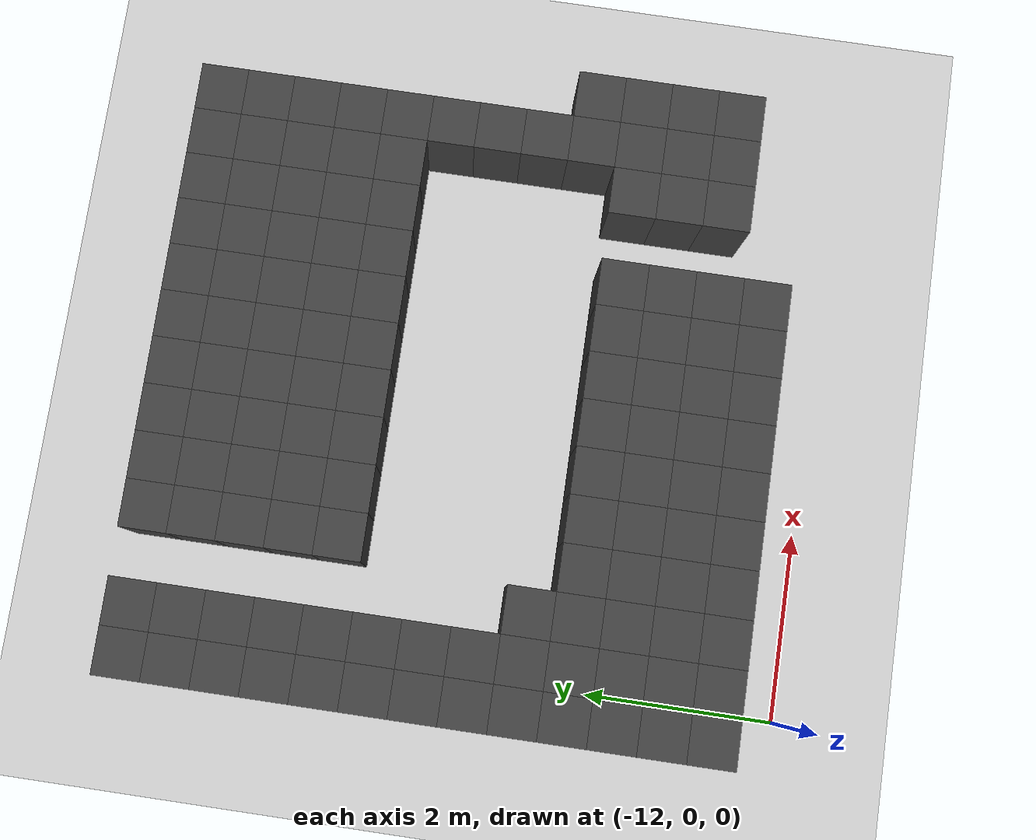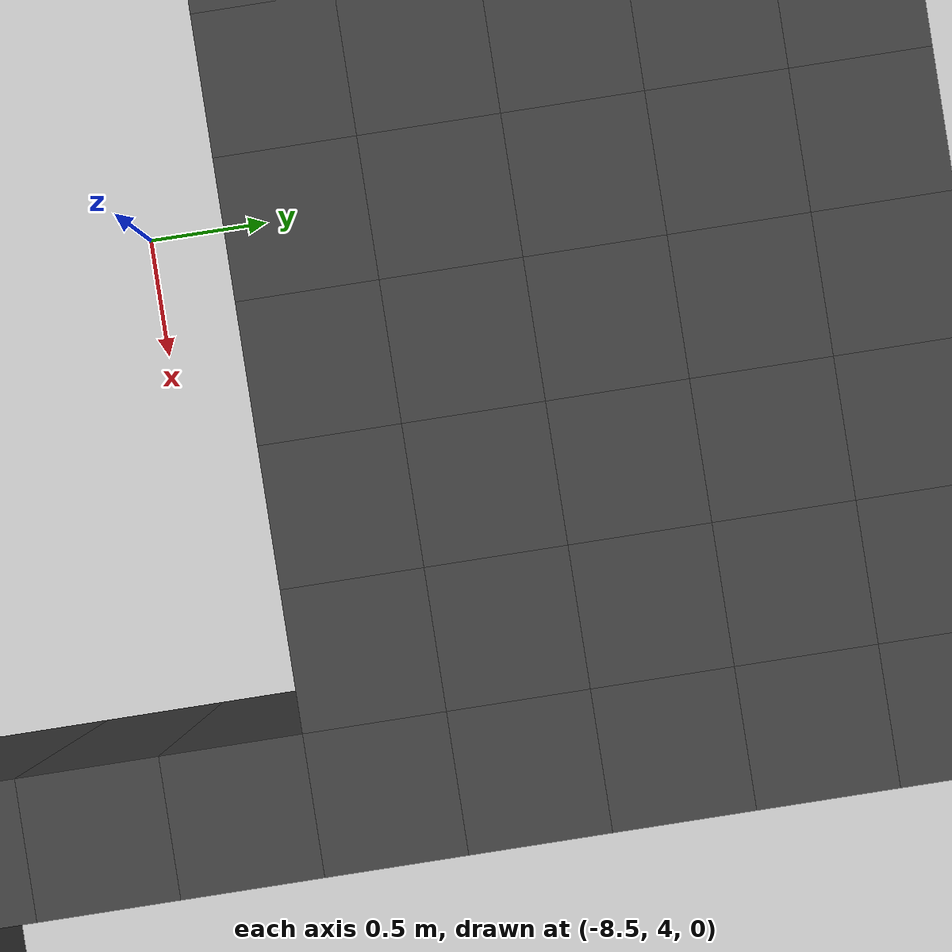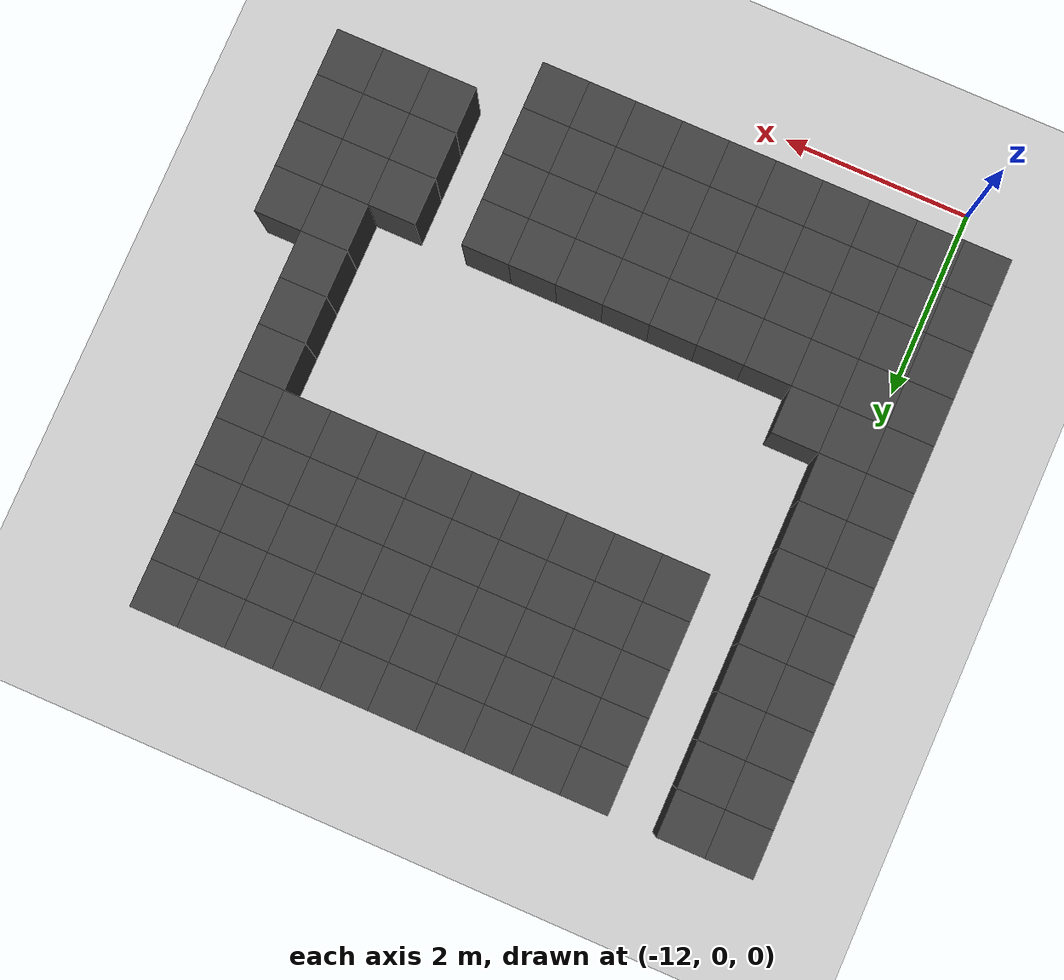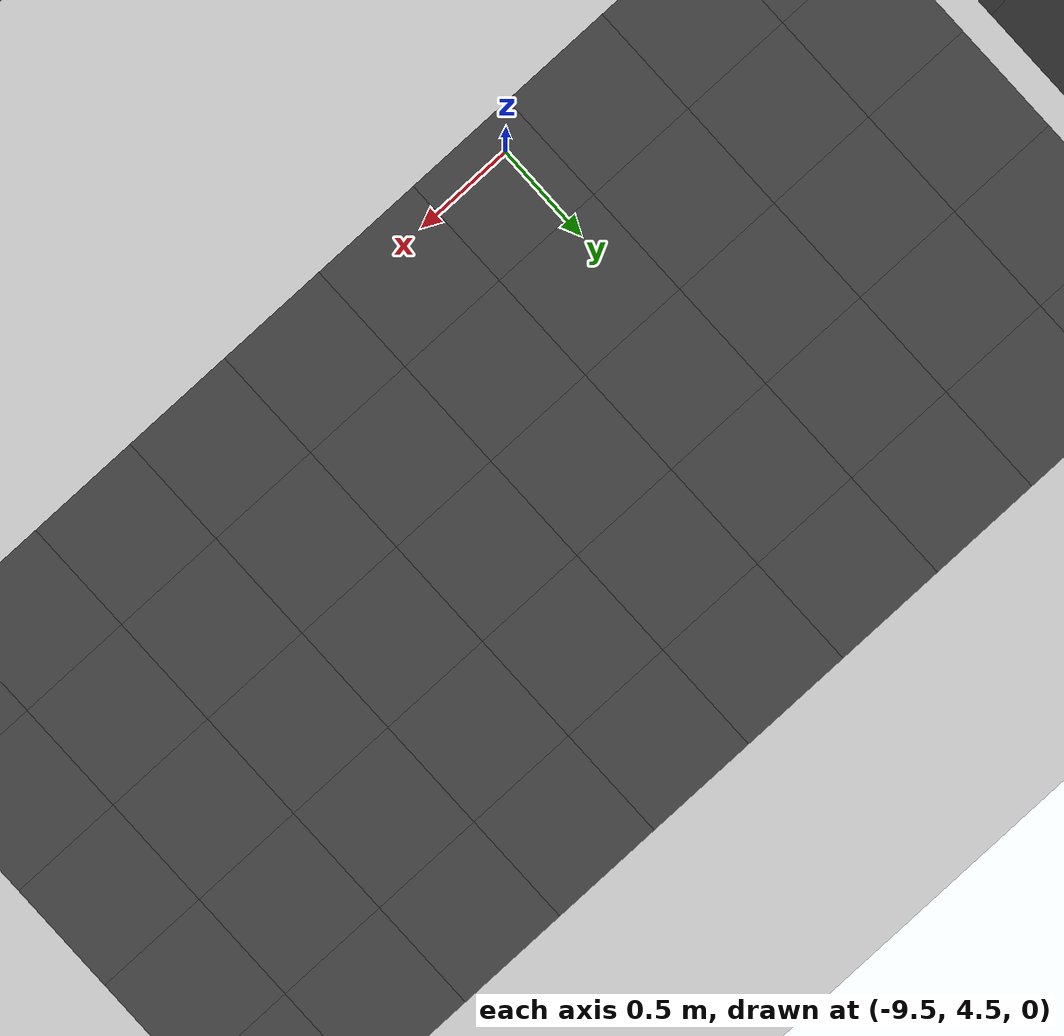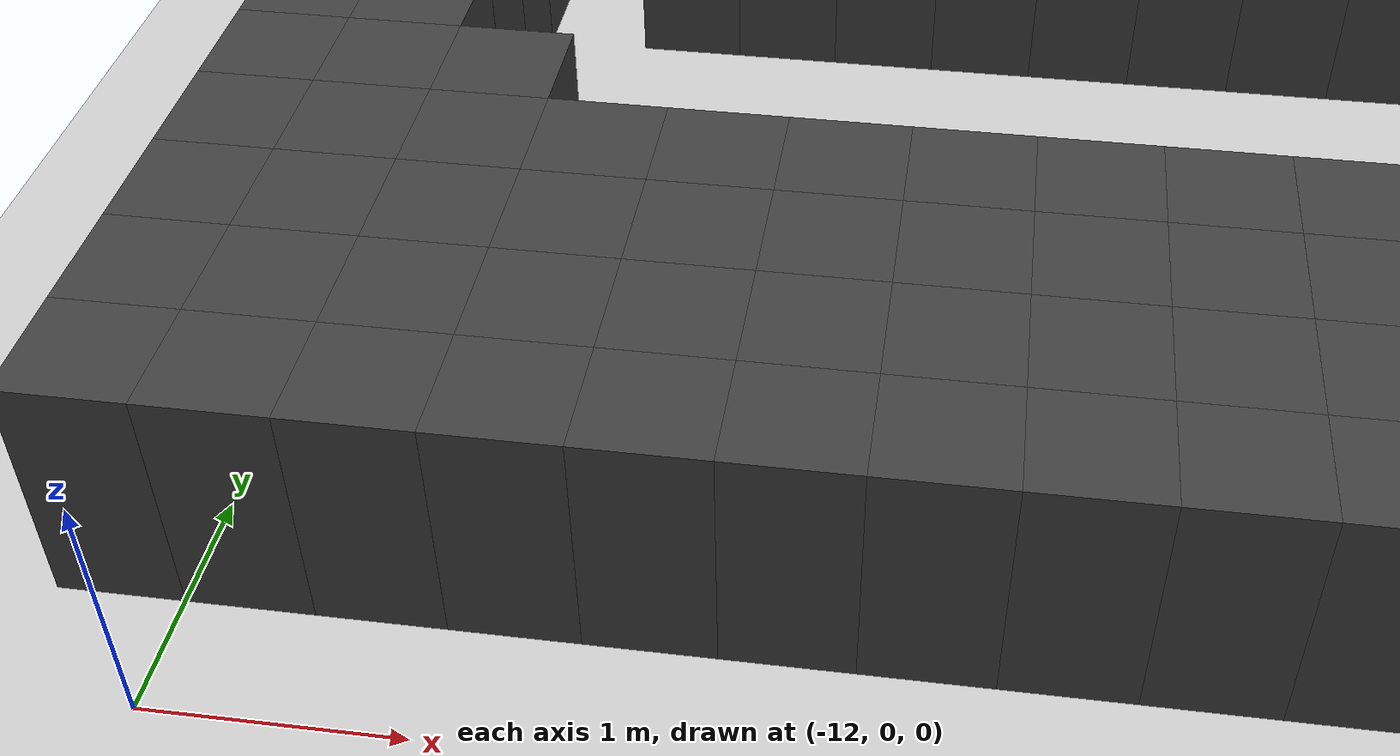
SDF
<sdf version="1.7">
 <world name="map_14074">
  <model name="ground_plane">
   <static>true</static>
   <link name="link">
    <collision name="collision">
     <geometry><plane><normal>0 0 1</normal><size>200 200</size></plane></geometry>
    </collision>
    <visual name="visual">
     <geometry><plane><normal>0 0 1</normal><size>200 200</size></plane></geometry>
     <material><ambient>0.8 0.8 0.8 1</ambient><diffuse>0.8 0.8 0.8 1</diffuse></material>
    </visual>
   </link>
  </model>
  <model name="maze_environment">
   <static>true</static>
   <link name="wall_522">
    <pose>-12.250 6.750 0.500 0 0 0</pose>
    <collision name="col"><geometry><box><size>0.5 0.5 1.0</size></box></geometry></collision>
    <visual name="vis">
     <geometry><box><size>0.5 0.5 1.0</size></box></geometry>
     <material><ambient>0.15 0.15 0.15 1</ambient><diffuse>0.25 0.25 0.25 1</diffuse></material>
    </visual>
   </link>
   <link name="wall_523">
    <pose>-11.750 6.750 0.500 0 0 0</pose>
    <collision name="col"><geometry><box><size>0.5 0.5 1.0</size></box></geometry></collision>
    <visual name="vis">
     <geometry><box><size>0.5 0.5 1.0</size></box></geometry>
     <material><ambient>0.15 0.15 0.15 1</ambient><diffuse>0.25 0.25 0.25 1</diffuse></material>
    </visual>
   </link>
   <link name="wall_524">
    <pose>-10.750 6.750 0.500 0 0 0</pose>
    <collision name="col"><geometry><box><size>0.5 0.5 1.0</size></box></geometry></collision>
    <visual name="vis">
     <geometry><box><size>0.5 0.5 1.0</size></box></geometry>
     <material><ambient>0.15 0.15 0.15 1</ambient><diffuse>0.25 0.25 0.25 1</diffuse></material>
    </visual>
   </link>
   <link name="wall_525">
    <pose>-10.250 6.750 0.500 0 0 0</pose>
    <collision name="col"><geometry><box><size>0.5 0.5 1.0</size></box></geometry></collision>
    <visual name="vis">
     <geometry><box><size>0.5 0.5 1.0</size></box></geometry>
     <material><ambient>0.15 0.15 0.15 1</ambient><diffuse>0.25 0.25 0.25 1</diffuse></material>
    </visual>
   </link>
   <link name="wall_526">
    <pose>-9.750 6.750 0.500 0 0 0</pose>
    <collision name="col"><geometry><box><size>0.5 0.5 1.0</size></box></geometry></collision>
    <visual name="vis">
     <geometry><box><size>0.5 0.5 1.0</size></box></geometry>
     <material><ambient>0.15 0.15 0.15 1</ambient><diffuse>0.25 0.25 0.25 1</diffuse></material>
    </visual>
   </link>
   <link name="wall_527">
    <pose>-9.250 6.750 0.500 0 0 0</pose>
    <collision name="col"><geometry><box><size>0.5 0.5 1.0</size></box></geometry></collision>
    <visual name="vis">
     <geometry><box><size>0.5 0.5 1.0</size></box></geometry>
     <material><ambient>0.15 0.15 0.15 1</ambient><diffuse>0.25 0.25 0.25 1</diffuse></material>
    </visual>
   </link>
   <link name="wall_528">
    <pose>-8.750 6.750 0.500 0 0 0</pose>
    <collision name="col"><geometry><box><size>0.5 0.5 1.0</size></box></geometry></collision>
    <visual name="vis">
     <geometry><box><size>0.5 0.5 1.0</size></box></geometry>
     <material><ambient>0.15 0.15 0.15 1</ambient><diffuse>0.25 0.25 0.25 1</diffuse></material>
    </visual>
   </link>
   <link name="wall_529">
    <pose>-8.250 6.750 0.500 0 0 0</pose>
    <collision name="col"><geometry><box><size>0.5 0.5 1.0</size></box></geometry></collision>
    <visual name="vis">
     <geometry><box><size>0.5 0.5 1.0</size></box></geometry>
     <material><ambient>0.15 0.15 0.15 1</ambient><diffuse>0.25 0.25 0.25 1</diffuse></material>
    </visual>
   </link>
   <link name="wall_530">
    <pose>-7.750 6.750 0.500 0 0 0</pose>
    <collision name="col"><geometry><box><size>0.5 0.5 1.0</size></box></geometry></collision>
    <visual name="vis">
     <geometry><box><size>0.5 0.5 1.0</size></box></geometry>
     <material><ambient>0.15 0.15 0.15 1</ambient><diffuse>0.25 0.25 0.25 1</diffuse></material>
    </visual>
   </link>
   <link name="wall_531">
    <pose>-7.250 6.750 0.500 0 0 0</pose>
    <collision name="col"><geometry><box><size>0.5 0.5 1.0</size></box></geometry></collision>
    <visual name="vis">
     <geometry><box><size>0.5 0.5 1.0</size></box></geometry>
     <material><ambient>0.15 0.15 0.15 1</ambient><diffuse>0.25 0.25 0.25 1</diffuse></material>
    </visual>
   </link>
   <link name="wall_532">
    <pose>-6.750 6.750 0.500 0 0 0</pose>
    <collision name="col"><geometry><box><size>0.5 0.5 1.0</size></box></geometry></collision>
    <visual name="vis">
     <geometry><box><size>0.5 0.5 1.0</size></box></geometry>
     <material><ambient>0.15 0.15 0.15 1</ambient><diffuse>0.25 0.25 0.25 1</diffuse></material>
    </visual>
   </link>
   <link name="wall_533">
    <pose>-6.250 6.750 0.500 0 0 0</pose>
    <collision name="col"><geometry><box><size>0.5 0.5 1.0</size></box></geometry></collision>
    <visual name="vis">
     <geometry><box><size>0.5 0.5 1.0</size></box></geometry>
     <material><ambient>0.15 0.15 0.15 1</ambient><diffuse>0.25 0.25 0.25 1</diffuse></material>
    </visual>
   </link>
   <link name="wall_557">
    <pose>-12.250 6.250 0.500 0 0 0</pose>
    <collision name="col"><geometry><box><size>0.5 0.5 1.0</size></box></geometry></collision>
    <visual name="vis">
     <geometry><box><size>0.5 0.5 1.0</size></box></geometry>
     <material><ambient>0.15 0.15 0.15 1</ambient><diffuse>0.25 0.25 0.25 1</diffuse></material>
    </visual>
   </link>
   <link name="wall_558">
    <pose>-11.750 6.250 0.500 0 0 0</pose>
    <collision name="col"><geometry><box><size>0.5 0.5 1.0</size></box></geometry></collision>
    <visual name="vis">
     <geometry><box><size>0.5 0.5 1.0</size></box></geometry>
     <material><ambient>0.15 0.15 0.15 1</ambient><diffuse>0.25 0.25 0.25 1</diffuse></material>
    </visual>
   </link>
   <link name="wall_559">
    <pose>-10.750 6.250 0.500 0 0 0</pose>
    <collision name="col"><geometry><box><size>0.5 0.5 1.0</size></box></geometry></collision>
    <visual name="vis">
     <geometry><box><size>0.5 0.5 1.0</size></box></geometry>
     <material><ambient>0.15 0.15 0.15 1</ambient><diffuse>0.25 0.25 0.25 1</diffuse></material>
    </visual>
   </link>
   <link name="wall_560">
    <pose>-10.250 6.250 0.500 0 0 0</pose>
    <collision name="col"><geometry><box><size>0.5 0.5 1.0</size></box></geometry></collision>
    <visual name="vis">
     <geometry><box><size>0.5 0.5 1.0</size></box></geometry>
     <material><ambient>0.15 0.15 0.15 1</ambient><diffuse>0.25 0.25 0.25 1</diffuse></material>
    </visual>
   </link>
   <link name="wall_561">
    <pose>-9.750 6.250 0.500 0 0 0</pose>
    <collision name="col"><geometry><box><size>0.5 0.5 1.0</size></box></geometry></collision>
    <visual name="vis">
     <geometry><box><size>0.5 0.5 1.0</size></box></geometry>
     <material><ambient>0.15 0.15 0.15 1</ambient><diffuse>0.25 0.25 0.25 1</diffuse></material>
    </visual>
   </link>
   <link name="wall_562">
    <pose>-9.250 6.250 0.500 0 0 0</pose>
    <collision name="col"><geometry><box><size>0.5 0.5 1.0</size></box></geometry></collision>
    <visual name="vis">
     <geometry><box><size>0.5 0.5 1.0</size></box></geometry>
     <material><ambient>0.15 0.15 0.15 1</ambient><diffuse>0.25 0.25 0.25 1</diffuse></material>
    </visual>
   </link>
   <link name="wall_563">
    <pose>-8.750 6.250 0.500 0 0 0</pose>
    <collision name="col"><geometry><box><size>0.5 0.5 1.0</size></box></geometry></collision>
    <visual name="vis">
     <geometry><box><size>0.5 0.5 1.0</size></box></geometry>
     <material><ambient>0.15 0.15 0.15 1</ambient><diffuse>0.25 0.25 0.25 1</diffuse></material>
    </visual>
   </link>
   <link name="wall_564">
    <pose>-8.250 6.250 0.500 0 0 0</pose>
    <collision name="col"><geometry><box><size>0.5 0.5 1.0</size></box></geometry></collision>
    <visual name="vis">
     <geometry><box><size>0.5 0.5 1.0</size></box></geometry>
     <material><ambient>0.15 0.15 0.15 1</ambient><diffuse>0.25 0.25 0.25 1</diffuse></material>
    </visual>
   </link>
   <link name="wall_565">
    <pose>-7.750 6.250 0.500 0 0 0</pose>
    <collision name="col"><geometry><box><size>0.5 0.5 1.0</size></box></geometry></collision>
    <visual name="vis">
     <geometry><box><size>0.5 0.5 1.0</size></box></geometry>
     <material><ambient>0.15 0.15 0.15 1</ambient><diffuse>0.25 0.25 0.25 1</diffuse></material>
    </visual>
   </link>
   <link name="wall_566">
    <pose>-7.250 6.250 0.500 0 0 0</pose>
    <collision name="col"><geometry><box><size>0.5 0.5 1.0</size></box></geometry></collision>
    <visual name="vis">
     <geometry><box><size>0.5 0.5 1.0</size></box></geometry>
     <material><ambient>0.15 0.15 0.15 1</ambient><diffuse>0.25 0.25 0.25 1</diffuse></material>
    </visual>
   </link>
   <link name="wall_567">
    <pose>-6.750 6.250 0.500 0 0 0</pose>
    <collision name="col"><geometry><box><size>0.5 0.5 1.0</size></box></geometry></collision>
    <visual name="vis">
     <geometry><box><size>0.5 0.5 1.0</size></box></geometry>
     <material><ambient>0.15 0.15 0.15 1</ambient><diffuse>0.25 0.25 0.25 1</diffuse></material>
    </visual>
   </link>
   <link name="wall_568">
    <pose>-6.250 6.250 0.500 0 0 0</pose>
    <collision name="col"><geometry><box><size>0.5 0.5 1.0</size></box></geometry></collision>
    <visual name="vis">
     <geometry><box><size>0.5 0.5 1.0</size></box></geometry>
     <material><ambient>0.15 0.15 0.15 1</ambient><diffuse>0.25 0.25 0.25 1</diffuse></material>
    </visual>
   </link>
   <link name="wall_587">
    <pose>-12.250 5.750 0.500 0 0 0</pose>
    <collision name="col"><geometry><box><size>0.5 0.5 1.0</size></box></geometry></collision>
    <visual name="vis">
     <geometry><box><size>0.5 0.5 1.0</size></box></geometry>
     <material><ambient>0.15 0.15 0.15 1</ambient><diffuse>0.25 0.25 0.25 1</diffuse></material>
    </visual>
   </link>
   <link name="wall_588">
    <pose>-11.750 5.750 0.500 0 0 0</pose>
    <collision name="col"><geometry><box><size>0.5 0.5 1.0</size></box></geometry></collision>
    <visual name="vis">
     <geometry><box><size>0.5 0.5 1.0</size></box></geometry>
     <material><ambient>0.15 0.15 0.15 1</ambient><diffuse>0.25 0.25 0.25 1</diffuse></material>
    </visual>
   </link>
   <link name="wall_589">
    <pose>-10.750 5.750 0.500 0 0 0</pose>
    <collision name="col"><geometry><box><size>0.5 0.5 1.0</size></box></geometry></collision>
    <visual name="vis">
     <geometry><box><size>0.5 0.5 1.0</size></box></geometry>
     <material><ambient>0.15 0.15 0.15 1</ambient><diffuse>0.25 0.25 0.25 1</diffuse></material>
    </visual>
   </link>
   <link name="wall_590">
    <pose>-10.250 5.750 0.500 0 0 0</pose>
    <collision name="col"><geometry><box><size>0.5 0.5 1.0</size></box></geometry></collision>
    <visual name="vis">
     <geometry><box><size>0.5 0.5 1.0</size></box></geometry>
     <material><ambient>0.15 0.15 0.15 1</ambient><diffuse>0.25 0.25 0.25 1</diffuse></material>
    </visual>
   </link>
   <link name="wall_591">
    <pose>-9.750 5.750 0.500 0 0 0</pose>
    <collision name="col"><geometry><box><size>0.5 0.5 1.0</size></box></geometry></collision>
    <visual name="vis">
     <geometry><box><size>0.5 0.5 1.0</size></box></geometry>
     <material><ambient>0.15 0.15 0.15 1</ambient><diffuse>0.25 0.25 0.25 1</diffuse></material>
    </visual>
   </link>
   <link name="wall_592">
    <pose>-9.250 5.750 0.500 0 0 0</pose>
    <collision name="col"><geometry><box><size>0.5 0.5 1.0</size></box></geometry></collision>
    <visual name="vis">
     <geometry><box><size>0.5 0.5 1.0</size></box></geometry>
     <material><ambient>0.15 0.15 0.15 1</ambient><diffuse>0.25 0.25 0.25 1</diffuse></material>
    </visual>
   </link>
   <link name="wall_593">
    <pose>-8.750 5.750 0.500 0 0 0</pose>
    <collision name="col"><geometry><box><size>0.5 0.5 1.0</size></box></geometry></collision>
    <visual name="vis">
     <geometry><box><size>0.5 0.5 1.0</size></box></geometry>
     <material><ambient>0.15 0.15 0.15 1</ambient><diffuse>0.25 0.25 0.25 1</diffuse></material>
    </visual>
   </link>
   <link name="wall_594">
    <pose>-8.250 5.750 0.500 0 0 0</pose>
    <collision name="col"><geometry><box><size>0.5 0.5 1.0</size></box></geometry></collision>
    <visual name="vis">
     <geometry><box><size>0.5 0.5 1.0</size></box></geometry>
     <material><ambient>0.15 0.15 0.15 1</ambient><diffuse>0.25 0.25 0.25 1</diffuse></material>
    </visual>
   </link>
   <link name="wall_595">
    <pose>-7.750 5.750 0.500 0 0 0</pose>
    <collision name="col"><geometry><box><size>0.5 0.5 1.0</size></box></geometry></collision>
    <visual name="vis">
     <geometry><box><size>0.5 0.5 1.0</size></box></geometry>
     <material><ambient>0.15 0.15 0.15 1</ambient><diffuse>0.25 0.25 0.25 1</diffuse></material>
    </visual>
   </link>
   <link name="wall_596">
    <pose>-7.250 5.750 0.500 0 0 0</pose>
    <collision name="col"><geometry><box><size>0.5 0.5 1.0</size></box></geometry></collision>
    <visual name="vis">
     <geometry><box><size>0.5 0.5 1.0</size></box></geometry>
     <material><ambient>0.15 0.15 0.15 1</ambient><diffuse>0.25 0.25 0.25 1</diffuse></material>
    </visual>
   </link>
   <link name="wall_597">
    <pose>-6.750 5.750 0.500 0 0 0</pose>
    <collision name="col"><geometry><box><size>0.5 0.5 1.0</size></box></geometry></collision>
    <visual name="vis">
     <geometry><box><size>0.5 0.5 1.0</size></box></geometry>
     <material><ambient>0.15 0.15 0.15 1</ambient><diffuse>0.25 0.25 0.25 1</diffuse></material>
    </visual>
   </link>
   <link name="wall_598">
    <pose>-6.250 5.750 0.500 0 0 0</pose>
    <collision name="col"><geometry><box><size>0.5 0.5 1.0</size></box></geometry></collision>
    <visual name="vis">
     <geometry><box><size>0.5 0.5 1.0</size></box></geometry>
     <material><ambient>0.15 0.15 0.15 1</ambient><diffuse>0.25 0.25 0.25 1</diffuse></material>
    </visual>
   </link>
   <link name="wall_608">
    <pose>-12.250 5.250 0.500 0 0 0</pose>
    <collision name="col"><geometry><box><size>0.5 0.5 1.0</size></box></geometry></collision>
    <visual name="vis">
     <geometry><box><size>0.5 0.5 1.0</size></box></geometry>
     <material><ambient>0.15 0.15 0.15 1</ambient><diffuse>0.25 0.25 0.25 1</diffuse></material>
    </visual>
   </link>
   <link name="wall_609">
    <pose>-11.750 5.250 0.500 0 0 0</pose>
    <collision name="col"><geometry><box><size>0.5 0.5 1.0</size></box></geometry></collision>
    <visual name="vis">
     <geometry><box><size>0.5 0.5 1.0</size></box></geometry>
     <material><ambient>0.15 0.15 0.15 1</ambient><diffuse>0.25 0.25 0.25 1</diffuse></material>
    </visual>
   </link>
   <link name="wall_610">
    <pose>-10.750 5.250 0.500 0 0 0</pose>
    <collision name="col"><geometry><box><size>0.5 0.5 1.0</size></box></geometry></collision>
    <visual name="vis">
     <geometry><box><size>0.5 0.5 1.0</size></box></geometry>
     <material><ambient>0.15 0.15 0.15 1</ambient><diffuse>0.25 0.25 0.25 1</diffuse></material>
    </visual>
   </link>
   <link name="wall_611">
    <pose>-10.250 5.250 0.500 0 0 0</pose>
    <collision name="col"><geometry><box><size>0.5 0.5 1.0</size></box></geometry></collision>
    <visual name="vis">
     <geometry><box><size>0.5 0.5 1.0</size></box></geometry>
     <material><ambient>0.15 0.15 0.15 1</ambient><diffuse>0.25 0.25 0.25 1</diffuse></material>
    </visual>
   </link>
   <link name="wall_612">
    <pose>-9.750 5.250 0.500 0 0 0</pose>
    <collision name="col"><geometry><box><size>0.5 0.5 1.0</size></box></geometry></collision>
    <visual name="vis">
     <geometry><box><size>0.5 0.5 1.0</size></box></geometry>
     <material><ambient>0.15 0.15 0.15 1</ambient><diffuse>0.25 0.25 0.25 1</diffuse></material>
    </visual>
   </link>
   <link name="wall_613">
    <pose>-9.250 5.250 0.500 0 0 0</pose>
    <collision name="col"><geometry><box><size>0.5 0.5 1.0</size></box></geometry></collision>
    <visual name="vis">
     <geometry><box><size>0.5 0.5 1.0</size></box></geometry>
     <material><ambient>0.15 0.15 0.15 1</ambient><diffuse>0.25 0.25 0.25 1</diffuse></material>
    </visual>
   </link>
   <link name="wall_614">
    <pose>-8.750 5.250 0.500 0 0 0</pose>
    <collision name="col"><geometry><box><size>0.5 0.5 1.0</size></box></geometry></collision>
    <visual name="vis">
     <geometry><box><size>0.5 0.5 1.0</size></box></geometry>
     <material><ambient>0.15 0.15 0.15 1</ambient><diffuse>0.25 0.25 0.25 1</diffuse></material>
    </visual>
   </link>
   <link name="wall_615">
    <pose>-8.250 5.250 0.500 0 0 0</pose>
    <collision name="col"><geometry><box><size>0.5 0.5 1.0</size></box></geometry></collision>
    <visual name="vis">
     <geometry><box><size>0.5 0.5 1.0</size></box></geometry>
     <material><ambient>0.15 0.15 0.15 1</ambient><diffuse>0.25 0.25 0.25 1</diffuse></material>
    </visual>
   </link>
   <link name="wall_616">
    <pose>-7.750 5.250 0.500 0 0 0</pose>
    <collision name="col"><geometry><box><size>0.5 0.5 1.0</size></box></geometry></collision>
    <visual name="vis">
     <geometry><box><size>0.5 0.5 1.0</size></box></geometry>
     <material><ambient>0.15 0.15 0.15 1</ambient><diffuse>0.25 0.25 0.25 1</diffuse></material>
    </visual>
   </link>
   <link name="wall_617">
    <pose>-7.250 5.250 0.500 0 0 0</pose>
    <collision name="col"><geometry><box><size>0.5 0.5 1.0</size></box></geometry></collision>
    <visual name="vis">
     <geometry><box><size>0.5 0.5 1.0</size></box></geometry>
     <material><ambient>0.15 0.15 0.15 1</ambient><diffuse>0.25 0.25 0.25 1</diffuse></material>
    </visual>
   </link>
   <link name="wall_618">
    <pose>-6.750 5.250 0.500 0 0 0</pose>
    <collision name="col"><geometry><box><size>0.5 0.5 1.0</size></box></geometry></collision>
    <visual name="vis">
     <geometry><box><size>0.5 0.5 1.0</size></box></geometry>
     <material><ambient>0.15 0.15 0.15 1</ambient><diffuse>0.25 0.25 0.25 1</diffuse></material>
    </visual>
   </link>
   <link name="wall_619">
    <pose>-6.250 5.250 0.500 0 0 0</pose>
    <collision name="col"><geometry><box><size>0.5 0.5 1.0</size></box></geometry></collision>
    <visual name="vis">
     <geometry><box><size>0.5 0.5 1.0</size></box></geometry>
     <material><ambient>0.15 0.15 0.15 1</ambient><diffuse>0.25 0.25 0.25 1</diffuse></material>
    </visual>
   </link>
   <link name="wall_638">
    <pose>-12.250 4.750 0.500 0 0 0</pose>
    <collision name="col"><geometry><box><size>0.5 0.5 1.0</size></box></geometry></collision>
    <visual name="vis">
     <geometry><box><size>0.5 0.5 1.0</size></box></geometry>
     <material><ambient>0.15 0.15 0.15 1</ambient><diffuse>0.25 0.25 0.25 1</diffuse></material>
    </visual>
   </link>
   <link name="wall_639">
    <pose>-11.750 4.750 0.500 0 0 0</pose>
    <collision name="col"><geometry><box><size>0.5 0.5 1.0</size></box></geometry></collision>
    <visual name="vis">
     <geometry><box><size>0.5 0.5 1.0</size></box></geometry>
     <material><ambient>0.15 0.15 0.15 1</ambient><diffuse>0.25 0.25 0.25 1</diffuse></material>
    </visual>
   </link>
   <link name="wall_640">
    <pose>-10.750 4.750 0.500 0 0 0</pose>
    <collision name="col"><geometry><box><size>0.5 0.5 1.0</size></box></geometry></collision>
    <visual name="vis">
     <geometry><box><size>0.5 0.5 1.0</size></box></geometry>
     <material><ambient>0.15 0.15 0.15 1</ambient><diffuse>0.25 0.25 0.25 1</diffuse></material>
    </visual>
   </link>
   <link name="wall_641">
    <pose>-10.250 4.750 0.500 0 0 0</pose>
    <collision name="col"><geometry><box><size>0.5 0.5 1.0</size></box></geometry></collision>
    <visual name="vis">
     <geometry><box><size>0.5 0.5 1.0</size></box></geometry>
     <material><ambient>0.15 0.15 0.15 1</ambient><diffuse>0.25 0.25 0.25 1</diffuse></material>
    </visual>
   </link>
   <link name="wall_642">
    <pose>-9.750 4.750 0.500 0 0 0</pose>
    <collision name="col"><geometry><box><size>0.5 0.5 1.0</size></box></geometry></collision>
    <visual name="vis">
     <geometry><box><size>0.5 0.5 1.0</size></box></geometry>
     <material><ambient>0.15 0.15 0.15 1</ambient><diffuse>0.25 0.25 0.25 1</diffuse></material>
    </visual>
   </link>
   <link name="wall_643">
    <pose>-9.250 4.750 0.500 0 0 0</pose>
    <collision name="col"><geometry><box><size>0.5 0.5 1.0</size></box></geometry></collision>
    <visual name="vis">
     <geometry><box><size>0.5 0.5 1.0</size></box></geometry>
     <material><ambient>0.15 0.15 0.15 1</ambient><diffuse>0.25 0.25 0.25 1</diffuse></material>
    </visual>
   </link>
   <link name="wall_644">
    <pose>-8.750 4.750 0.500 0 0 0</pose>
    <collision name="col"><geometry><box><size>0.5 0.5 1.0</size></box></geometry></collision>
    <visual name="vis">
     <geometry><box><size>0.5 0.5 1.0</size></box></geometry>
     <material><ambient>0.15 0.15 0.15 1</ambient><diffuse>0.25 0.25 0.25 1</diffuse></material>
    </visual>
   </link>
   <link name="wall_645">
    <pose>-8.250 4.750 0.500 0 0 0</pose>
    <collision name="col"><geometry><box><size>0.5 0.5 1.0</size></box></geometry></collision>
    <visual name="vis">
     <geometry><box><size>0.5 0.5 1.0</size></box></geometry>
     <material><ambient>0.15 0.15 0.15 1</ambient><diffuse>0.25 0.25 0.25 1</diffuse></material>
    </visual>
   </link>
   <link name="wall_646">
    <pose>-7.750 4.750 0.500 0 0 0</pose>
    <collision name="col"><geometry><box><size>0.5 0.5 1.0</size></box></geometry></collision>
    <visual name="vis">
     <geometry><box><size>0.5 0.5 1.0</size></box></geometry>
     <material><ambient>0.15 0.15 0.15 1</ambient><diffuse>0.25 0.25 0.25 1</diffuse></material>
    </visual>
   </link>
   <link name="wall_647">
    <pose>-7.250 4.750 0.500 0 0 0</pose>
    <collision name="col"><geometry><box><size>0.5 0.5 1.0</size></box></geometry></collision>
    <visual name="vis">
     <geometry><box><size>0.5 0.5 1.0</size></box></geometry>
     <material><ambient>0.15 0.15 0.15 1</ambient><diffuse>0.25 0.25 0.25 1</diffuse></material>
    </visual>
   </link>
   <link name="wall_648">
    <pose>-6.750 4.750 0.500 0 0 0</pose>
    <collision name="col"><geometry><box><size>0.5 0.5 1.0</size></box></geometry></collision>
    <visual name="vis">
     <geometry><box><size>0.5 0.5 1.0</size></box></geometry>
     <material><ambient>0.15 0.15 0.15 1</ambient><diffuse>0.25 0.25 0.25 1</diffuse></material>
    </visual>
   </link>
   <link name="wall_649">
    <pose>-6.250 4.750 0.500 0 0 0</pose>
    <collision name="col"><geometry><box><size>0.5 0.5 1.0</size></box></geometry></collision>
    <visual name="vis">
     <geometry><box><size>0.5 0.5 1.0</size></box></geometry>
     <material><ambient>0.15 0.15 0.15 1</ambient><diffuse>0.25 0.25 0.25 1</diffuse></material>
    </visual>
   </link>
   <link name="wall_672">
    <pose>-12.250 4.250 0.500 0 0 0</pose>
    <collision name="col"><geometry><box><size>0.5 0.5 1.0</size></box></geometry></collision>
    <visual name="vis">
     <geometry><box><size>0.5 0.5 1.0</size></box></geometry>
     <material><ambient>0.15 0.15 0.15 1</ambient><diffuse>0.25 0.25 0.25 1</diffuse></material>
    </visual>
   </link>
   <link name="wall_673">
    <pose>-11.750 4.250 0.500 0 0 0</pose>
    <collision name="col"><geometry><box><size>0.5 0.5 1.0</size></box></geometry></collision>
    <visual name="vis">
     <geometry><box><size>0.5 0.5 1.0</size></box></geometry>
     <material><ambient>0.15 0.15 0.15 1</ambient><diffuse>0.25 0.25 0.25 1</diffuse></material>
    </visual>
   </link>
   <link name="wall_674">
    <pose>-6.250 4.250 0.500 0 0 0</pose>
    <collision name="col"><geometry><box><size>0.5 0.5 1.0</size></box></geometry></collision>
    <visual name="vis">
     <geometry><box><size>0.5 0.5 1.0</size></box></geometry>
     <material><ambient>0.15 0.15 0.15 1</ambient><diffuse>0.25 0.25 0.25 1</diffuse></material>
    </visual>
   </link>
   <link name="wall_697">
    <pose>-12.250 3.750 0.500 0 0 0</pose>
    <collision name="col"><geometry><box><size>0.5 0.5 1.0</size></box></geometry></collision>
    <visual name="vis">
     <geometry><box><size>0.5 0.5 1.0</size></box></geometry>
     <material><ambient>0.15 0.15 0.15 1</ambient><diffuse>0.25 0.25 0.25 1</diffuse></material>
    </visual>
   </link>
   <link name="wall_698">
    <pose>-11.750 3.750 0.500 0 0 0</pose>
    <collision name="col"><geometry><box><size>0.5 0.5 1.0</size></box></geometry></collision>
    <visual name="vis">
     <geometry><box><size>0.5 0.5 1.0</size></box></geometry>
     <material><ambient>0.15 0.15 0.15 1</ambient><diffuse>0.25 0.25 0.25 1</diffuse></material>
    </visual>
   </link>
   <link name="wall_699">
    <pose>-6.250 3.750 0.500 0 0 0</pose>
    <collision name="col"><geometry><box><size>0.5 0.5 1.0</size></box></geometry></collision>
    <visual name="vis">
     <geometry><box><size>0.5 0.5 1.0</size></box></geometry>
     <material><ambient>0.15 0.15 0.15 1</ambient><diffuse>0.25 0.25 0.25 1</diffuse></material>
    </visual>
   </link>
   <link name="wall_725">
    <pose>-12.250 3.250 0.500 0 0 0</pose>
    <collision name="col"><geometry><box><size>0.5 0.5 1.0</size></box></geometry></collision>
    <visual name="vis">
     <geometry><box><size>0.5 0.5 1.0</size></box></geometry>
     <material><ambient>0.15 0.15 0.15 1</ambient><diffuse>0.25 0.25 0.25 1</diffuse></material>
    </visual>
   </link>
   <link name="wall_726">
    <pose>-11.750 3.250 0.500 0 0 0</pose>
    <collision name="col"><geometry><box><size>0.5 0.5 1.0</size></box></geometry></collision>
    <visual name="vis">
     <geometry><box><size>0.5 0.5 1.0</size></box></geometry>
     <material><ambient>0.15 0.15 0.15 1</ambient><diffuse>0.25 0.25 0.25 1</diffuse></material>
    </visual>
   </link>
   <link name="wall_727">
    <pose>-6.250 3.250 0.500 0 0 0</pose>
    <collision name="col"><geometry><box><size>0.5 0.5 1.0</size></box></geometry></collision>
    <visual name="vis">
     <geometry><box><size>0.5 0.5 1.0</size></box></geometry>
     <material><ambient>0.15 0.15 0.15 1</ambient><diffuse>0.25 0.25 0.25 1</diffuse></material>
    </visual>
   </link>
   <link name="wall_753">
    <pose>-12.250 2.750 0.500 0 0 0</pose>
    <collision name="col"><geometry><box><size>0.5 0.5 1.0</size></box></geometry></collision>
    <visual name="vis">
     <geometry><box><size>0.5 0.5 1.0</size></box></geometry>
     <material><ambient>0.15 0.15 0.15 1</ambient><diffuse>0.25 0.25 0.25 1</diffuse></material>
    </visual>
   </link>
   <link name="wall_754">
    <pose>-11.750 2.750 0.500 0 0 0</pose>
    <collision name="col"><geometry><box><size>0.5 0.5 1.0</size></box></geometry></collision>
    <visual name="vis">
     <geometry><box><size>0.5 0.5 1.0</size></box></geometry>
     <material><ambient>0.15 0.15 0.15 1</ambient><diffuse>0.25 0.25 0.25 1</diffuse></material>
    </visual>
   </link>
   <link name="wall_755">
    <pose>-11.250 2.750 0.500 0 0 0</pose>
    <collision name="col"><geometry><box><size>0.5 0.5 1.0</size></box></geometry></collision>
    <visual name="vis">
     <geometry><box><size>0.5 0.5 1.0</size></box></geometry>
     <material><ambient>0.15 0.15 0.15 1</ambient><diffuse>0.25 0.25 0.25 1</diffuse></material>
    </visual>
   </link>
   <link name="wall_756">
    <pose>-6.250 2.750 0.500 0 0 0</pose>
    <collision name="col"><geometry><box><size>0.5 0.5 1.0</size></box></geometry></collision>
    <visual name="vis">
     <geometry><box><size>0.5 0.5 1.0</size></box></geometry>
     <material><ambient>0.15 0.15 0.15 1</ambient><diffuse>0.25 0.25 0.25 1</diffuse></material>
    </visual>
   </link>
   <link name="wall_757">
    <pose>-5.750 2.750 0.500 0 0 0</pose>
    <collision name="col"><geometry><box><size>0.5 0.5 1.0</size></box></geometry></collision>
    <visual name="vis">
     <geometry><box><size>0.5 0.5 1.0</size></box></geometry>
     <material><ambient>0.15 0.15 0.15 1</ambient><diffuse>0.25 0.25 0.25 1</diffuse></material>
    </visual>
   </link>
   <link name="wall_786">
    <pose>-12.250 2.250 0.500 0 0 0</pose>
    <collision name="col"><geometry><box><size>0.5 0.5 1.0</size></box></geometry></collision>
    <visual name="vis">
     <geometry><box><size>0.5 0.5 1.0</size></box></geometry>
     <material><ambient>0.15 0.15 0.15 1</ambient><diffuse>0.25 0.25 0.25 1</diffuse></material>
    </visual>
   </link>
   <link name="wall_787">
    <pose>-11.750 2.250 0.500 0 0 0</pose>
    <collision name="col"><geometry><box><size>0.5 0.5 1.0</size></box></geometry></collision>
    <visual name="vis">
     <geometry><box><size>0.5 0.5 1.0</size></box></geometry>
     <material><ambient>0.15 0.15 0.15 1</ambient><diffuse>0.25 0.25 0.25 1</diffuse></material>
    </visual>
   </link>
   <link name="wall_788">
    <pose>-11.250 2.250 0.500 0 0 0</pose>
    <collision name="col"><geometry><box><size>0.5 0.5 1.0</size></box></geometry></collision>
    <visual name="vis">
     <geometry><box><size>0.5 0.5 1.0</size></box></geometry>
     <material><ambient>0.15 0.15 0.15 1</ambient><diffuse>0.25 0.25 0.25 1</diffuse></material>
    </visual>
   </link>
   <link name="wall_789">
    <pose>-10.750 2.250 0.500 0 0 0</pose>
    <collision name="col"><geometry><box><size>0.5 0.5 1.0</size></box></geometry></collision>
    <visual name="vis">
     <geometry><box><size>0.5 0.5 1.0</size></box></geometry>
     <material><ambient>0.15 0.15 0.15 1</ambient><diffuse>0.25 0.25 0.25 1</diffuse></material>
    </visual>
   </link>
   <link name="wall_790">
    <pose>-10.250 2.250 0.500 0 0 0</pose>
    <collision name="col"><geometry><box><size>0.5 0.5 1.0</size></box></geometry></collision>
    <visual name="vis">
     <geometry><box><size>0.5 0.5 1.0</size></box></geometry>
     <material><ambient>0.15 0.15 0.15 1</ambient><diffuse>0.25 0.25 0.25 1</diffuse></material>
    </visual>
   </link>
   <link name="wall_791">
    <pose>-9.750 2.250 0.500 0 0 0</pose>
    <collision name="col"><geometry><box><size>0.5 0.5 1.0</size></box></geometry></collision>
    <visual name="vis">
     <geometry><box><size>0.5 0.5 1.0</size></box></geometry>
     <material><ambient>0.15 0.15 0.15 1</ambient><diffuse>0.25 0.25 0.25 1</diffuse></material>
    </visual>
   </link>
   <link name="wall_792">
    <pose>-9.250 2.250 0.500 0 0 0</pose>
    <collision name="col"><geometry><box><size>0.5 0.5 1.0</size></box></geometry></collision>
    <visual name="vis">
     <geometry><box><size>0.5 0.5 1.0</size></box></geometry>
     <material><ambient>0.15 0.15 0.15 1</ambient><diffuse>0.25 0.25 0.25 1</diffuse></material>
    </visual>
   </link>
   <link name="wall_793">
    <pose>-8.750 2.250 0.500 0 0 0</pose>
    <collision name="col"><geometry><box><size>0.5 0.5 1.0</size></box></geometry></collision>
    <visual name="vis">
     <geometry><box><size>0.5 0.5 1.0</size></box></geometry>
     <material><ambient>0.15 0.15 0.15 1</ambient><diffuse>0.25 0.25 0.25 1</diffuse></material>
    </visual>
   </link>
   <link name="wall_794">
    <pose>-8.250 2.250 0.500 0 0 0</pose>
    <collision name="col"><geometry><box><size>0.5 0.5 1.0</size></box></geometry></collision>
    <visual name="vis">
     <geometry><box><size>0.5 0.5 1.0</size></box></geometry>
     <material><ambient>0.15 0.15 0.15 1</ambient><diffuse>0.25 0.25 0.25 1</diffuse></material>
    </visual>
   </link>
   <link name="wall_795">
    <pose>-7.750 2.250 0.500 0 0 0</pose>
    <collision name="col"><geometry><box><size>0.5 0.5 1.0</size></box></geometry></collision>
    <visual name="vis">
     <geometry><box><size>0.5 0.5 1.0</size></box></geometry>
     <material><ambient>0.15 0.15 0.15 1</ambient><diffuse>0.25 0.25 0.25 1</diffuse></material>
    </visual>
   </link>
   <link name="wall_796">
    <pose>-6.750 2.250 0.500 0 0 0</pose>
    <collision name="col"><geometry><box><size>0.5 0.5 1.0</size></box></geometry></collision>
    <visual name="vis">
     <geometry><box><size>0.5 0.5 1.0</size></box></geometry>
     <material><ambient>0.15 0.15 0.15 1</ambient><diffuse>0.25 0.25 0.25 1</diffuse></material>
    </visual>
   </link>
   <link name="wall_797">
    <pose>-6.250 2.250 0.500 0 0 0</pose>
    <collision name="col"><geometry><box><size>0.5 0.5 1.0</size></box></geometry></collision>
    <visual name="vis">
     <geometry><box><size>0.5 0.5 1.0</size></box></geometry>
     <material><ambient>0.15 0.15 0.15 1</ambient><diffuse>0.25 0.25 0.25 1</diffuse></material>
    </visual>
   </link>
   <link name="wall_798">
    <pose>-5.750 2.250 0.500 0 0 0</pose>
    <collision name="col"><geometry><box><size>0.5 0.5 1.0</size></box></geometry></collision>
    <visual name="vis">
     <geometry><box><size>0.5 0.5 1.0</size></box></geometry>
     <material><ambient>0.15 0.15 0.15 1</ambient><diffuse>0.25 0.25 0.25 1</diffuse></material>
    </visual>
   </link>
   <link name="wall_827">
    <pose>-12.250 1.750 0.500 0 0 0</pose>
    <collision name="col"><geometry><box><size>0.5 0.5 1.0</size></box></geometry></collision>
    <visual name="vis">
     <geometry><box><size>0.5 0.5 1.0</size></box></geometry>
     <material><ambient>0.15 0.15 0.15 1</ambient><diffuse>0.25 0.25 0.25 1</diffuse></material>
    </visual>
   </link>
   <link name="wall_828">
    <pose>-11.750 1.750 0.500 0 0 0</pose>
    <collision name="col"><geometry><box><size>0.5 0.5 1.0</size></box></geometry></collision>
    <visual name="vis">
     <geometry><box><size>0.5 0.5 1.0</size></box></geometry>
     <material><ambient>0.15 0.15 0.15 1</ambient><diffuse>0.25 0.25 0.25 1</diffuse></material>
    </visual>
   </link>
   <link name="wall_829">
    <pose>-11.250 1.750 0.500 0 0 0</pose>
    <collision name="col"><geometry><box><size>0.5 0.5 1.0</size></box></geometry></collision>
    <visual name="vis">
     <geometry><box><size>0.5 0.5 1.0</size></box></geometry>
     <material><ambient>0.15 0.15 0.15 1</ambient><diffuse>0.25 0.25 0.25 1</diffuse></material>
    </visual>
   </link>
   <link name="wall_830">
    <pose>-10.750 1.750 0.500 0 0 0</pose>
    <collision name="col"><geometry><box><size>0.5 0.5 1.0</size></box></geometry></collision>
    <visual name="vis">
     <geometry><box><size>0.5 0.5 1.0</size></box></geometry>
     <material><ambient>0.15 0.15 0.15 1</ambient><diffuse>0.25 0.25 0.25 1</diffuse></material>
    </visual>
   </link>
   <link name="wall_831">
    <pose>-10.250 1.750 0.500 0 0 0</pose>
    <collision name="col"><geometry><box><size>0.5 0.5 1.0</size></box></geometry></collision>
    <visual name="vis">
     <geometry><box><size>0.5 0.5 1.0</size></box></geometry>
     <material><ambient>0.15 0.15 0.15 1</ambient><diffuse>0.25 0.25 0.25 1</diffuse></material>
    </visual>
   </link>
   <link name="wall_832">
    <pose>-9.750 1.750 0.500 0 0 0</pose>
    <collision name="col"><geometry><box><size>0.5 0.5 1.0</size></box></geometry></collision>
    <visual name="vis">
     <geometry><box><size>0.5 0.5 1.0</size></box></geometry>
     <material><ambient>0.15 0.15 0.15 1</ambient><diffuse>0.25 0.25 0.25 1</diffuse></material>
    </visual>
   </link>
   <link name="wall_833">
    <pose>-9.250 1.750 0.500 0 0 0</pose>
    <collision name="col"><geometry><box><size>0.5 0.5 1.0</size></box></geometry></collision>
    <visual name="vis">
     <geometry><box><size>0.5 0.5 1.0</size></box></geometry>
     <material><ambient>0.15 0.15 0.15 1</ambient><diffuse>0.25 0.25 0.25 1</diffuse></material>
    </visual>
   </link>
   <link name="wall_834">
    <pose>-8.750 1.750 0.500 0 0 0</pose>
    <collision name="col"><geometry><box><size>0.5 0.5 1.0</size></box></geometry></collision>
    <visual name="vis">
     <geometry><box><size>0.5 0.5 1.0</size></box></geometry>
     <material><ambient>0.15 0.15 0.15 1</ambient><diffuse>0.25 0.25 0.25 1</diffuse></material>
    </visual>
   </link>
   <link name="wall_835">
    <pose>-8.250 1.750 0.500 0 0 0</pose>
    <collision name="col"><geometry><box><size>0.5 0.5 1.0</size></box></geometry></collision>
    <visual name="vis">
     <geometry><box><size>0.5 0.5 1.0</size></box></geometry>
     <material><ambient>0.15 0.15 0.15 1</ambient><diffuse>0.25 0.25 0.25 1</diffuse></material>
    </visual>
   </link>
   <link name="wall_836">
    <pose>-7.750 1.750 0.500 0 0 0</pose>
    <collision name="col"><geometry><box><size>0.5 0.5 1.0</size></box></geometry></collision>
    <visual name="vis">
     <geometry><box><size>0.5 0.5 1.0</size></box></geometry>
     <material><ambient>0.15 0.15 0.15 1</ambient><diffuse>0.25 0.25 0.25 1</diffuse></material>
    </visual>
   </link>
   <link name="wall_837">
    <pose>-6.750 1.750 0.500 0 0 0</pose>
    <collision name="col"><geometry><box><size>0.5 0.5 1.0</size></box></geometry></collision>
    <visual name="vis">
     <geometry><box><size>0.5 0.5 1.0</size></box></geometry>
     <material><ambient>0.15 0.15 0.15 1</ambient><diffuse>0.25 0.25 0.25 1</diffuse></material>
    </visual>
   </link>
   <link name="wall_838">
    <pose>-6.250 1.750 0.500 0 0 0</pose>
    <collision name="col"><geometry><box><size>0.5 0.5 1.0</size></box></geometry></collision>
    <visual name="vis">
     <geometry><box><size>0.5 0.5 1.0</size></box></geometry>
     <material><ambient>0.15 0.15 0.15 1</ambient><diffuse>0.25 0.25 0.25 1</diffuse></material>
    </visual>
   </link>
   <link name="wall_839">
    <pose>-5.750 1.750 0.500 0 0 0</pose>
    <collision name="col"><geometry><box><size>0.5 0.5 1.0</size></box></geometry></collision>
    <visual name="vis">
     <geometry><box><size>0.5 0.5 1.0</size></box></geometry>
     <material><ambient>0.15 0.15 0.15 1</ambient><diffuse>0.25 0.25 0.25 1</diffuse></material>
    </visual>
   </link>
   <link name="wall_868">
    <pose>-12.250 1.250 0.500 0 0 0</pose>
    <collision name="col"><geometry><box><size>0.5 0.5 1.0</size></box></geometry></collision>
    <visual name="vis">
     <geometry><box><size>0.5 0.5 1.0</size></box></geometry>
     <material><ambient>0.15 0.15 0.15 1</ambient><diffuse>0.25 0.25 0.25 1</diffuse></material>
    </visual>
   </link>
   <link name="wall_869">
    <pose>-11.750 1.250 0.500 0 0 0</pose>
    <collision name="col"><geometry><box><size>0.5 0.5 1.0</size></box></geometry></collision>
    <visual name="vis">
     <geometry><box><size>0.5 0.5 1.0</size></box></geometry>
     <material><ambient>0.15 0.15 0.15 1</ambient><diffuse>0.25 0.25 0.25 1</diffuse></material>
    </visual>
   </link>
   <link name="wall_870">
    <pose>-11.250 1.250 0.500 0 0 0</pose>
    <collision name="col"><geometry><box><size>0.5 0.5 1.0</size></box></geometry></collision>
    <visual name="vis">
     <geometry><box><size>0.5 0.5 1.0</size></box></geometry>
     <material><ambient>0.15 0.15 0.15 1</ambient><diffuse>0.25 0.25 0.25 1</diffuse></material>
    </visual>
   </link>
   <link name="wall_871">
    <pose>-10.750 1.250 0.500 0 0 0</pose>
    <collision name="col"><geometry><box><size>0.5 0.5 1.0</size></box></geometry></collision>
    <visual name="vis">
     <geometry><box><size>0.5 0.5 1.0</size></box></geometry>
     <material><ambient>0.15 0.15 0.15 1</ambient><diffuse>0.25 0.25 0.25 1</diffuse></material>
    </visual>
   </link>
   <link name="wall_872">
    <pose>-10.250 1.250 0.500 0 0 0</pose>
    <collision name="col"><geometry><box><size>0.5 0.5 1.0</size></box></geometry></collision>
    <visual name="vis">
     <geometry><box><size>0.5 0.5 1.0</size></box></geometry>
     <material><ambient>0.15 0.15 0.15 1</ambient><diffuse>0.25 0.25 0.25 1</diffuse></material>
    </visual>
   </link>
   <link name="wall_873">
    <pose>-9.750 1.250 0.500 0 0 0</pose>
    <collision name="col"><geometry><box><size>0.5 0.5 1.0</size></box></geometry></collision>
    <visual name="vis">
     <geometry><box><size>0.5 0.5 1.0</size></box></geometry>
     <material><ambient>0.15 0.15 0.15 1</ambient><diffuse>0.25 0.25 0.25 1</diffuse></material>
    </visual>
   </link>
   <link name="wall_874">
    <pose>-9.250 1.250 0.500 0 0 0</pose>
    <collision name="col"><geometry><box><size>0.5 0.5 1.0</size></box></geometry></collision>
    <visual name="vis">
     <geometry><box><size>0.5 0.5 1.0</size></box></geometry>
     <material><ambient>0.15 0.15 0.15 1</ambient><diffuse>0.25 0.25 0.25 1</diffuse></material>
    </visual>
   </link>
   <link name="wall_875">
    <pose>-8.750 1.250 0.500 0 0 0</pose>
    <collision name="col"><geometry><box><size>0.5 0.5 1.0</size></box></geometry></collision>
    <visual name="vis">
     <geometry><box><size>0.5 0.5 1.0</size></box></geometry>
     <material><ambient>0.15 0.15 0.15 1</ambient><diffuse>0.25 0.25 0.25 1</diffuse></material>
    </visual>
   </link>
   <link name="wall_876">
    <pose>-8.250 1.250 0.500 0 0 0</pose>
    <collision name="col"><geometry><box><size>0.5 0.5 1.0</size></box></geometry></collision>
    <visual name="vis">
     <geometry><box><size>0.5 0.5 1.0</size></box></geometry>
     <material><ambient>0.15 0.15 0.15 1</ambient><diffuse>0.25 0.25 0.25 1</diffuse></material>
    </visual>
   </link>
   <link name="wall_877">
    <pose>-7.750 1.250 0.500 0 0 0</pose>
    <collision name="col"><geometry><box><size>0.5 0.5 1.0</size></box></geometry></collision>
    <visual name="vis">
     <geometry><box><size>0.5 0.5 1.0</size></box></geometry>
     <material><ambient>0.15 0.15 0.15 1</ambient><diffuse>0.25 0.25 0.25 1</diffuse></material>
    </visual>
   </link>
   <link name="wall_878">
    <pose>-6.750 1.250 0.500 0 0 0</pose>
    <collision name="col"><geometry><box><size>0.5 0.5 1.0</size></box></geometry></collision>
    <visual name="vis">
     <geometry><box><size>0.5 0.5 1.0</size></box></geometry>
     <material><ambient>0.15 0.15 0.15 1</ambient><diffuse>0.25 0.25 0.25 1</diffuse></material>
    </visual>
   </link>
   <link name="wall_879">
    <pose>-6.250 1.250 0.500 0 0 0</pose>
    <collision name="col"><geometry><box><size>0.5 0.5 1.0</size></box></geometry></collision>
    <visual name="vis">
     <geometry><box><size>0.5 0.5 1.0</size></box></geometry>
     <material><ambient>0.15 0.15 0.15 1</ambient><diffuse>0.25 0.25 0.25 1</diffuse></material>
    </visual>
   </link>
   <link name="wall_880">
    <pose>-5.750 1.250 0.500 0 0 0</pose>
    <collision name="col"><geometry><box><size>0.5 0.5 1.0</size></box></geometry></collision>
    <visual name="vis">
     <geometry><box><size>0.5 0.5 1.0</size></box></geometry>
     <material><ambient>0.15 0.15 0.15 1</ambient><diffuse>0.25 0.25 0.25 1</diffuse></material>
    </visual>
   </link>
   <link name="wall_911">
    <pose>-12.250 0.750 0.500 0 0 0</pose>
    <collision name="col"><geometry><box><size>0.5 0.5 1.0</size></box></geometry></collision>
    <visual name="vis">
     <geometry><box><size>0.5 0.5 1.0</size></box></geometry>
     <material><ambient>0.15 0.15 0.15 1</ambient><diffuse>0.25 0.25 0.25 1</diffuse></material>
    </visual>
   </link>
   <link name="wall_912">
    <pose>-11.750 0.750 0.500 0 0 0</pose>
    <collision name="col"><geometry><box><size>0.5 0.5 1.0</size></box></geometry></collision>
    <visual name="vis">
     <geometry><box><size>0.5 0.5 1.0</size></box></geometry>
     <material><ambient>0.15 0.15 0.15 1</ambient><diffuse>0.25 0.25 0.25 1</diffuse></material>
    </visual>
   </link>
   <link name="wall_913">
    <pose>-11.250 0.750 0.500 0 0 0</pose>
    <collision name="col"><geometry><box><size>0.5 0.5 1.0</size></box></geometry></collision>
    <visual name="vis">
     <geometry><box><size>0.5 0.5 1.0</size></box></geometry>
     <material><ambient>0.15 0.15 0.15 1</ambient><diffuse>0.25 0.25 0.25 1</diffuse></material>
    </visual>
   </link>
   <link name="wall_914">
    <pose>-10.750 0.750 0.500 0 0 0</pose>
    <collision name="col"><geometry><box><size>0.5 0.5 1.0</size></box></geometry></collision>
    <visual name="vis">
     <geometry><box><size>0.5 0.5 1.0</size></box></geometry>
     <material><ambient>0.15 0.15 0.15 1</ambient><diffuse>0.25 0.25 0.25 1</diffuse></material>
    </visual>
   </link>
   <link name="wall_915">
    <pose>-10.250 0.750 0.500 0 0 0</pose>
    <collision name="col"><geometry><box><size>0.5 0.5 1.0</size></box></geometry></collision>
    <visual name="vis">
     <geometry><box><size>0.5 0.5 1.0</size></box></geometry>
     <material><ambient>0.15 0.15 0.15 1</ambient><diffuse>0.25 0.25 0.25 1</diffuse></material>
    </visual>
   </link>
   <link name="wall_916">
    <pose>-9.750 0.750 0.500 0 0 0</pose>
    <collision name="col"><geometry><box><size>0.5 0.5 1.0</size></box></geometry></collision>
    <visual name="vis">
     <geometry><box><size>0.5 0.5 1.0</size></box></geometry>
     <material><ambient>0.15 0.15 0.15 1</ambient><diffuse>0.25 0.25 0.25 1</diffuse></material>
    </visual>
   </link>
   <link name="wall_917">
    <pose>-9.250 0.750 0.500 0 0 0</pose>
    <collision name="col"><geometry><box><size>0.5 0.5 1.0</size></box></geometry></collision>
    <visual name="vis">
     <geometry><box><size>0.5 0.5 1.0</size></box></geometry>
     <material><ambient>0.15 0.15 0.15 1</ambient><diffuse>0.25 0.25 0.25 1</diffuse></material>
    </visual>
   </link>
   <link name="wall_918">
    <pose>-8.750 0.750 0.500 0 0 0</pose>
    <collision name="col"><geometry><box><size>0.5 0.5 1.0</size></box></geometry></collision>
    <visual name="vis">
     <geometry><box><size>0.5 0.5 1.0</size></box></geometry>
     <material><ambient>0.15 0.15 0.15 1</ambient><diffuse>0.25 0.25 0.25 1</diffuse></material>
    </visual>
   </link>
   <link name="wall_919">
    <pose>-8.250 0.750 0.500 0 0 0</pose>
    <collision name="col"><geometry><box><size>0.5 0.5 1.0</size></box></geometry></collision>
    <visual name="vis">
     <geometry><box><size>0.5 0.5 1.0</size></box></geometry>
     <material><ambient>0.15 0.15 0.15 1</ambient><diffuse>0.25 0.25 0.25 1</diffuse></material>
    </visual>
   </link>
   <link name="wall_920">
    <pose>-7.750 0.750 0.500 0 0 0</pose>
    <collision name="col"><geometry><box><size>0.5 0.5 1.0</size></box></geometry></collision>
    <visual name="vis">
     <geometry><box><size>0.5 0.5 1.0</size></box></geometry>
     <material><ambient>0.15 0.15 0.15 1</ambient><diffuse>0.25 0.25 0.25 1</diffuse></material>
    </visual>
   </link>
  </model>
 </world>
</sdf>
